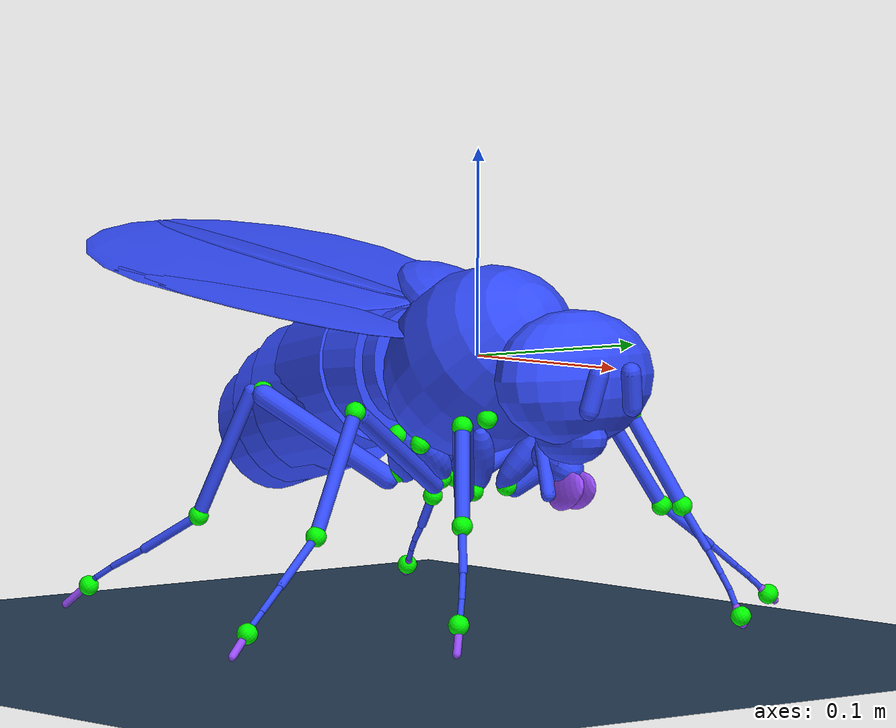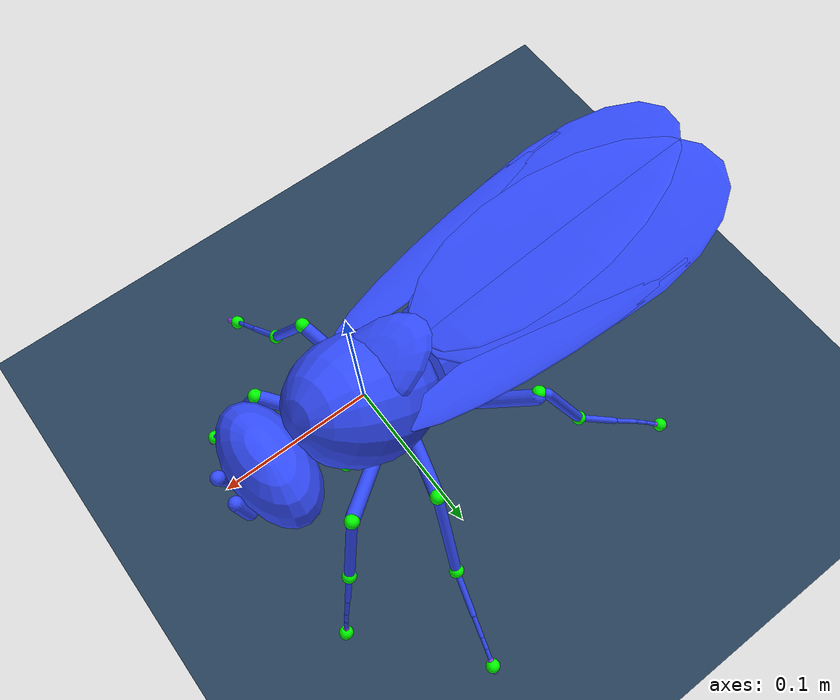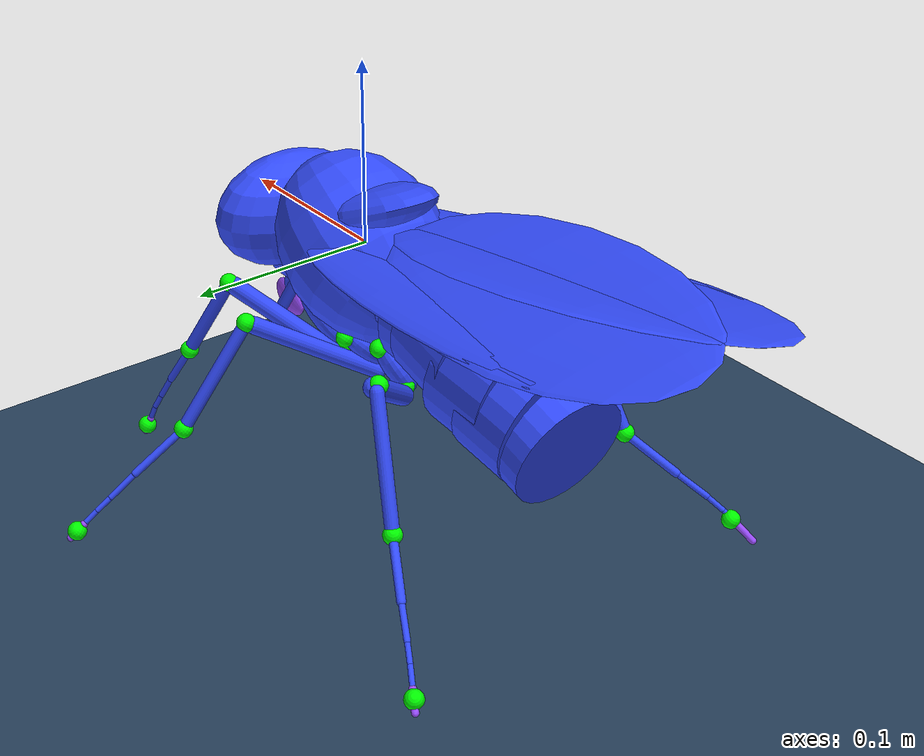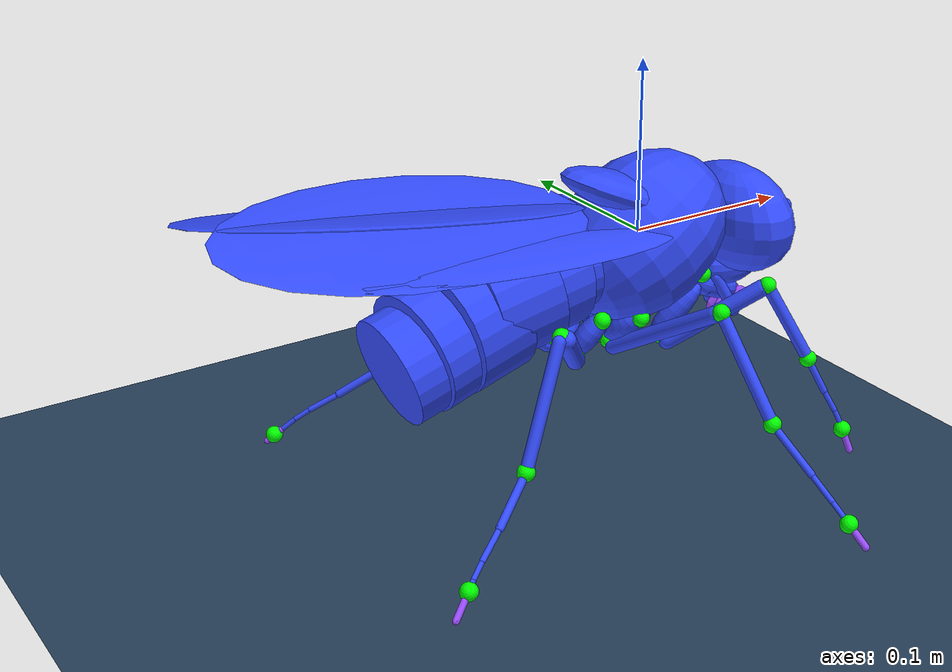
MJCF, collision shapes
<mujoco model="fruitfly">
  <compiler autolimits="true" angle="radian" />

  <option gravity="0 0 -981" density="0.00128" viscosity="0.000185" cone="elliptic" noslip_iterations="3" />

  <size nkey="1" />

  <default>
    <mesh scale="0.1 0.1 0.1" />
    <geom friction="0.5" solref="0.0002 1" solimp="0.95 0.99 0.01" />
    <general ctrllimited="true" />
    <default class="body">
      <joint limited="true" solreflimit="0.001 1" armature="1e-02" />
      <geom type="mesh" contype="0" conaffinity="0" group="1" material="body" density="0.478" />
      <site group="3" size="0.01" />
      <default class="collision">
        <geom type="capsule" contype="1" conaffinity="1" condim="1" group="4" material="blue" density="0" />
        <default class="adhesion-collision">
          <geom material="pink" friction="0.6" margin="0.0005" gap="0.0005" />
          <site type="capsule" />
        </default>
        <default class="collision-membrane">
          <geom group="5" />
        </default>
      </default>
      <default class="adhesion">
        <general dyntype="none" dynprm="1" />
        <default class="adhesion_claw">
          <adhesion group="3" ctrlrange="0 1" gain="0.985" />
        </default>
        <default class="adhesion_labrum">
          <adhesion group="3" ctrlrange="0 1" gain="1" />
        </default>
      </default>
      <default class="head">
        <joint stiffness="0.03" damping="0.001" />
        <geom density="0.575" />
        <general forcerange="-0.1 0.1" gainprm="0.1" />
        <default class="labrum">
          <general forcerange="-0.01 0.01" gainprm="0.01" />
        </default>
      </default>
      <default class="antenna">
        <joint damping="0.0003" />
        <general forcerange="-0.01 0.01" gainprm="0.01" />
        <default class="antenna_extend">
          <joint axis="1 0 0" range="-0.2 0.5" />
        </default>
        <default class="antenna_twist">
          <joint axis="0 1 0" range="-0.1 0.09" />
        </default>
        <default class="antenna_abduct">
          <joint axis="0 0 1" range="-0.4 0.8" />
        </default>
      </default>
      <default class="wing">
        <joint stiffness="0.01" damping="0.0005" />
        <general ctrlrange="-.55 .55" />
        <default class="yaw">
          <joint axis="0 0 1" range="-1.5 1.5" springref="1.5" />
          <general gainprm="3" />
        </default>
        <default class="roll">
          <joint axis="1 0 0" range="-1 1.5" springref="0.7" />
          <general gainprm="2" />
        </default>
        <default class="pitch">
          <joint axis="0 1 0" range="-1.27 2.92" springref="-1" />
          <general gainprm="1" />
        </default>
        <default class="wing-inertial">
          <geom type="box" rgba="0 0 0 0" mass="8e-06" />
        </default>
        <default class="wing-fluid">
          <geom type="ellipsoid" group="3" mass="0" />
        </default>
      </default>
      <default class="abdomen">
        <joint group="3" stiffness="0.05" damping="0.01" />
        <geom density="0.445" />
        <general gainprm="0.1" />
        <default class="abduct_abdomen">
          <joint axis="0 0 1" range="-0.1 0.1" />
        </default>
        <default class="extend_abdomen">
          <joint axis="1 0 0" range="-0.15 0.1" />
        </default>
      </default>
      <default class="haltere">
        <joint axis="1 0 0" springdamper="0.005 0.1" range="-0.2 0.2" />
      </default>
      <default class="leg">
        <joint stiffness="0.01" damping="1" />
        <geom density="1.21" />
        <default class="coxa">
          <default class="twist_coxa_T1">
            <joint axis="0 1 0" range="-0.8 0.8" />
            <general ctrlrange="-10 10" ctrllimited="true" />
          </default>
          <default class="flexion_coxa_T1">
            <joint axis="0 0 1" range="-1 0.7" />
            <general ctrlrange="-10 10" ctrllimited="true" />
          </default>
          <default class="extend_coxa_T1">
            <joint axis="1 0 0" range="-0.2 1.7" />
            <general ctrlrange="-10 10" ctrllimited="true" />
          </default>
          <default class="twist_coxa_T2">
            <joint axis="0 1 0" range="-0.75 0.8" />
            <general ctrlrange="-10 10" ctrllimited="true" />
          </default>
          <default class="flexion_coxa_T2">
            <joint axis="0 0 1" range="-0.5 0.3" />
            <general ctrlrange="-10 10" ctrllimited="true" />
          </default>
          <default class="extend_coxa_T2">
            <joint axis="1 0 0" range="-0.2 0.9" />
            <general ctrlrange="-10 10" ctrllimited="true" />
          </default>
          <default class="twist_coxa_T3">
            <joint axis="0 1 0" range="-0.15 0.8" />
            <general ctrlrange="-10 10" ctrllimited="true" />
          </default>
          <default class="flexion_coxa_T3">
            <joint axis="0 0 1" range="-0.9 0.25" />
            <general ctrlrange="-10 10" ctrllimited="true" />
          </default>
          <default class="extend_coxa_T3">
            <joint axis="1 0 0" range="-0.3 1.3" />
            <general ctrlrange="-10 10" ctrllimited="true" />
          </default>
        </default>
        <default class="femur">
          <default class="twist_femur">
            <joint axis="0 1 0" range="-1 1" />
            <general ctrlrange="-10 10" ctrllimited="true" />
            <default class="twist_femur_T2">
              <general ctrlrange="-10 10" ctrllimited="true" />
            </default>
            <default class="twist_femur_T3">
              <general ctrlrange="-10 10" ctrllimited="true" />
            </default>
          </default>
          <default class="extend_femur">
            <joint axis="1 0 0" range="-0.15 2" damping="1.5" />
            <default class="extend_femur_T1">
              <general ctrlrange="-10 10" ctrllimited="true" />
            </default>
            <default class="extend_femur_T2">
              <general ctrlrange="-10 10" ctrllimited="true" />
            </default>
          </default>
          <default class="extend_femur_T3">
            <joint axis="1 0 0" range="-0.7 1.5" damping="1.5" />
            <general ctrlrange="-10 10" ctrllimited="true" />
          </default>
        </default>
        <default class="tibia">
          <default class="extend_tibia">
            <joint axis="1 0 0" range="-1.35 1.3" damping="3" />
            <general ctrlrange="-10 10" ctrllimited="true" />
            <default class="extend_tibia_T2">
              <general ctrlrange="-10 10" ctrllimited="true" />
            </default>
            <default class="extend_tibia_T3">
              <general ctrlrange="-10 10" ctrllimited="true" />
            </default>
          </default>
        </default>
        <default class="tarsus">
          <joint axis="1 0 0" />
          <default class="extend_tarsus_T1">
            <joint range="-0.7 1.2" damping="3" />
            <general ctrlrange="-10 10" ctrllimited="true" />
          </default>
          <default class="extend_tarsus_T2">
            <joint range="-1 1.8" damping="3" />
            <general ctrlrange="-10 10" ctrllimited="true" />
          </default>
          <default class="extend_tarsus_T3">
            <joint range="-0.8 1.2" damping="3" />
            <general ctrlrange="-10 10" ctrllimited="true" />
          </default>
          <default class="extend_tarsus">
            <joint group="3" stiffness="0.1" range="-0.36 0.36" />
            <!-- damping=".002" -->
            <general ctrlrange="-10 10" ctrllimited="true" />
          </default>
        </default>
      </default>
    </default>
  </default>

  <visual>
    <global offwidth="3840" offheight="2160" />
    <quality shadowsize="2048" offsamples="24" />
    <headlight ambient="0.4 0.4 0.4" diffuse="0.8 0.8 0.8" specular="0.1 0.1 0.1" />
    <map stiffness="1e+04" stiffnessrot="5e+04" force="2e-05" />
    <scale jointwidth="0.01" framewidth="0.01" />
  </visual>

  <statistic meansize="0.02" />

  <asset>
    <texture type="2d" name="groundplane" builtin="checker" rgb1="0.2 0.3 0.4" rgb2="0.1 0.2 0.3" width="200" height="200" />
    <material name="body" shininess="0.6" rgba="0.674 0.35 0.143 1" />
    <material name="red" shininess="0.692" rgba="0.8 0.0279 0.00154 1" />
    <material name="ocelli" shininess="1" rgba="0.128 0.0488 0.0154 1" />
    <material name="black" shininess="0.727" rgba="0 0 0 1" />
    <material name="bristle-brown" shininess="0.907" rgba="0 0 0 1" />
    <material name="lower" shininess="0.6" rgba="0.799 0.61 0.386 1" />
    <material name="brown" shininess="0.6" rgba="0.202 0.0782 0.0262 1" />
    <material name="membrane" specular="0.62" shininess="0.907" rgba="0.539 0.686 0.8 0.4" />
    <material name="blue" shininess="0.6" rgba="0.2 0.3 1 1" />
    <material name="ballsurface" texture="groundplane" texuniform="true" texrepeat="2 2" reflectance="0.2" />
    <mesh name="head" file="assets/head_body.obj" />
    <mesh name="head_red" file="assets/head_red.obj" />
    <mesh name="head_ocelli" file="assets/head_ocelli.obj" />
    <mesh name="head_black" file="assets/head_black.obj" />
    <mesh name="haustellum" file="assets/haustellum_body.obj" />
    <mesh name="haustellum_black" file="assets/haustellum_black.obj" />
    <mesh name="rostrum" file="assets/rostrum_body.obj" />
    <mesh name="rostrum_bristle-brown" file="assets/rostrum_bristle-brown.obj" />
    <mesh name="labrum_left_lower" file="assets/labrum_left_lower.obj" />
    <mesh name="wing_left_brown" file="assets/wing_left_brown.obj" />
    <mesh name="wing_left_membrane" file="assets/wing_left_membrane.obj" />
    <mesh name="antenna_left" file="assets/antenna_left_body.obj" />
    <mesh name="antenna_left_black" file="assets/antenna_left_black.obj" />
    <mesh name="haltere_left" file="assets/haltere_left_body.obj" />
    <mesh name="labrum_right_lower" file="assets/labrum_right_lower.obj" />
    <mesh name="wing_right_brown" file="assets/wing_right_brown.obj" />
    <mesh name="wing_right_membrane" file="assets/wing_right_membrane.obj" />
    <mesh name="antenna_right" file="assets/antenna_right_body.obj" />
    <mesh name="antenna_right_black" file="assets/antenna_right_black.obj" />
    <mesh name="haltere_right" file="assets/haltere_right_body.obj" />
    <mesh name="thorax" file="assets/thorax_body.obj" />
    <mesh name="thorax_black" file="assets/thorax_black.obj" />
    <mesh name="abdomen_1" file="assets/abdomen_1_body.obj" />
    <mesh name="abdomen_1_lower" file="assets/abdomen_1_lower.obj" />
    <mesh name="abdomen_2" file="assets/abdomen_2_body.obj" />
    <mesh name="abdomen_2_lower" file="assets/abdomen_2_lower.obj" />
    <mesh name="abdomen_3" file="assets/abdomen_3_body.obj" />
    <mesh name="abdomen_3_lower" file="assets/abdomen_3_lower.obj" />
    <mesh name="abdomen_4" file="assets/abdomen_4_body.obj" />
    <mesh name="abdomen_4_lower" file="assets/abdomen_4_lower.obj" />
    <mesh name="abdomen_5" file="assets/abdomen_5_body.obj" />
    <mesh name="abdomen_5_lower" file="assets/abdomen_5_lower.obj" />
    <mesh name="abdomen_6" file="assets/abdomen_6_body.obj" />
    <mesh name="abdomen_6_lower" file="assets/abdomen_6_lower.obj" />
    <mesh name="abdomen_7" file="assets/abdomen_7_body.obj" />
    <mesh name="abdomen_7_lower" file="assets/abdomen_7_lower.obj" />
    <mesh name="abdomen_8" file="assets/abdomen_8_body.obj" />
    <mesh name="tibia_T1_left" file="assets/tibia_T1_left_body.obj" />
    <mesh name="tarsus_T1_1_left" file="assets/tarsus_T1_1_left_body.obj" />
    <mesh name="tarsus_T1_2_left" file="assets/tarsus_T1_2_left_body.obj" />
    <mesh name="tarsus_T1_3_left" file="assets/tarsus_T1_3_left_body.obj" />
    <mesh name="tarsus_T1_4_left" file="assets/tarsus_T1_4_left_body.obj" />
    <mesh name="tarsal_claw_T1_left_brown" file="assets/tarsal_claw_T1_left_brown.obj" />
    <mesh name="tarsus_T2_2_left" file="assets/tarsus_T2_2_left_body.obj" />
    <mesh name="tarsus_T2_3_left" file="assets/tarsus_T2_3_left_body.obj" />
    <mesh name="tarsus_T2_4_left" file="assets/tarsus_T2_4_left_body.obj" />
    <mesh name="tarsal_claw_T2_left_brown" file="assets/tarsal_claw_T2_left_brown.obj" />
    <mesh name="tarsus_T2_1_left" file="assets/tarsus_T2_1_left_body.obj" />
    <mesh name="tarsus_T3_2_left" file="assets/tarsus_T3_2_left_body.obj" />
    <mesh name="tarsus_T3_3_left" file="assets/tarsus_T3_3_left_body.obj" />
    <mesh name="tarsus_T3_4_left" file="assets/tarsus_T3_4_left_body.obj" />
    <mesh name="tarsal_claw_T3_left_brown" file="assets/tarsal_claw_T3_left_brown.obj" />
    <mesh name="tarsus_T3_1_left" file="assets/tarsus_T3_1_left_body.obj" />
    <mesh name="tibia_T2_left" file="assets/tibia_T2_left_body.obj" />
    <mesh name="tibia_T3_left" file="assets/tibia_T3_left_body.obj" />
    <mesh name="femur_T1_left" file="assets/femur_T1_left_body.obj" />
    <mesh name="femur_T2_left" file="assets/femur_T2_left_body.obj" />
    <mesh name="femur_T3_left" file="assets/femur_T3_left_body.obj" />
    <mesh name="femur_T1_right" file="assets/femur_T1_right_body.obj" />
    <mesh name="tibia_T1_right" file="assets/tibia_T1_right_body.obj" />
    <mesh name="tarsus_T1_1_right" file="assets/tarsus_T1_1_right_body.obj" />
    <mesh name="tarsus_T1_2_right" file="assets/tarsus_T1_2_right_body.obj" />
    <mesh name="tarsus_T1_3_right" file="assets/tarsus_T1_3_right_body.obj" />
    <mesh name="tarsus_T1_4_right" file="assets/tarsus_T1_4_right_body.obj" />
    <mesh name="tarsal_claw_T1_right_brown" file="assets/tarsal_claw_T1_right_brown.obj" />
    <mesh name="femur_T2_right" file="assets/femur_T2_right_body.obj" />
    <mesh name="tibia_T2_right" file="assets/tibia_T2_right_body.obj" />
    <mesh name="tarsus_T2_1_right" file="assets/tarsus_T2_1_right_body.obj" />
    <mesh name="tarsus_T2_2_right" file="assets/tarsus_T2_2_right_body.obj" />
    <mesh name="tarsus_T2_3_right" file="assets/tarsus_T2_3_right_body.obj" />
    <mesh name="tarsus_T2_4_right" file="assets/tarsus_T2_4_right_body.obj" />
    <mesh name="tarsal_claw_T2_right_brown" file="assets/tarsal_claw_T2_right_brown.obj" />
    <mesh name="femur_T3_right" file="assets/femur_T3_right_body.obj" />
    <mesh name="tibia_T3_right" file="assets/tibia_T3_right_body.obj" />
    <mesh name="tarsus_T3_1_right" file="assets/tarsus_T3_1_right_body.obj" />
    <mesh name="tarsus_T3_2_right" file="assets/tarsus_T3_2_right_body.obj" />
    <mesh name="tarsus_T3_3_right" file="assets/tarsus_T3_3_right_body.obj" />
    <mesh name="tarsus_T3_4_right" file="assets/tarsus_T3_4_right_body.obj" />
    <mesh name="tarsal_claw_T3_right_brown" file="assets/tarsal_claw_T3_right_brown.obj" />
    <mesh name="coxa_T1_left" file="assets/coxa_T1_left_body.obj" />
    <mesh name="coxa_T1_right" file="assets/coxa_T1_right_body.obj" />
    <mesh name="coxa_T2_left" file="assets/coxa_T2_left_body.obj" />
    <mesh name="coxa_T2_right" file="assets/coxa_T2_right_body.obj" />
    <mesh name="coxa_T3_left" file="assets/coxa_T3_left_body.obj" />
    <mesh name="coxa_T3_right" file="assets/coxa_T3_right_body.obj" />
    <material name="pink" rgba="0.6 0.3 1 1" />
  </asset>

  <worldbody>
    <geom name="floor" type="plane" size="5 5 .1" material="ballsurface" pos="0 0 -.15" />
    <body name="thorax" childclass="body">
      <freejoint name="free" />
      <light name="right" mode="trackcom" pos="0 -1 1" dir="0 1 -1" diffuse="0.3 0.3 0.3" />
      <camera name="track1" mode="trackcom" pos="0.6 0.6 0.22" quat="0.312 0.221 0.533 0.754" />
      <camera name="track2" mode="trackcom" pos="0 -1.1 0.1" quat="0.707 0.707 0 0" />
      <camera name="track3" mode="trackcom" pos="-0.9 -0.9 0.9" quat="0.82 0.425 -0.176 -0.34" />
      <camera name="back" mode="track" pos="-0.462 0 0.297" xyaxes="0 -1 0 0.707 0 0.707" />
      <camera name="side" mode="track" pos="-0.055 0.424 -0.064" xyaxes="-1 0 0 0 0 1" />
      <camera name="bottom" mode="track" pos="0.01 0 -0.516" xyaxes="0 1 0 0.991 0 0.136" />
      <light name="left" mode="trackcom" pos="0 1 1" dir="0 -1 -1" diffuse="0.3 0.3 0.3" />
      <light name="tracking" mode="trackcom" pos="0 0 1" />
      <site name="thorax" />
      <site name="hover_up_dir" pos="0.0262 0 0.0262" quat="0.915 0 0.403 0" />
      <geom name="thorax" mass="0.00034" pos="-0.00791 0 -0.123" quat="0 0 0 -1" mesh="thorax" />
      <geom name="thorax_collision" class="collision" type="ellipsoid" size="0.0437 0.0437 0.0551" pos="0.00168 0 -0.00262" quat="0 -0.479 0 -0.878" />
      <geom name="thorax_collision2" class="collision" type="ellipsoid" size="0.0499 0.028 0.0114" pos="-0.00445 0 0.0219" quat="0 -0.199 0 -0.98" />
      <geom name="thorax_black" material="black" mass="0" pos="-0.00791 0 -0.123" quat="0 0 0 -1" mesh="thorax_black" />
      <body name="head" childclass="head" pos="0.0567 3.81e-07 -0.00305" quat="0.702 -0.087 0.087 -0.702">
        <site name="head" pos="0 0.015 0" quat="0 0 0 1" />
        <geom name="head_collision" class="collision" type="ellipsoid" size="0.0455 0.0262 0.0324" pos="0 0.0149 0.000875" euler="0.3 0 0" />
        <geom name="head" pos="4.11e-07 -0.0334 -0.132" quat="0.702 0.087 0.087 -0.702" mesh="head" />
        <geom name="head_red" material="red" pos="4.11e-07 -0.0334 -0.132" quat="0.702 0.087 0.087 -0.702" mesh="head_red" />
        <geom name="head_ocelli" material="ocelli" pos="4.11e-07 -0.0334 -0.132" quat="0.702 0.087 0.087 -0.702" mesh="head_ocelli" />
        <camera name="eye_right" fovy="140" pos="0.0219 0.0131 0" quat="0.474 0.688 -0.344 -0.429" />
        <camera name="eye_left" fovy="140" pos="-0.0219 0.0131 0" quat="0.474 0.688 0.344 0.429" />
        <geom name="head_black" material="black" mass="0" pos="4.11e-07 -0.0334 -0.132" quat="0.702 0.087 0.087 -0.702" mesh="head_black" />
        <body name="rostrum" pos="0 0.0368 -0.0235" quat="2.2e-07 -1.21e-07 0.192 -0.981">
          <geom name="rostrum" pos="-4e-07 0.106 -0.0742" quat="0.705 0.0494 -0.0494 0.705" mesh="rostrum" />
          <geom name="rostrum_collision_right" class="collision" size="0.0035" fromto="0.00613 0.0324 0 0.0114 0.0245 -0.0236" />
          <geom name="rostrum_collision_left" class="collision" size="0.0035" fromto="-0.00613 0.0324 0 -0.0114 0.0245 -0.0236" />
          <geom name="rostrum_collision" class="collision" type="ellipsoid" size="0.0131 0.0219 0.0131" pos="0 0.0175 0.00263" euler="0.1 0 0" />
          <geom name="rostrum_bristle-brown" material="bristle-brown" pos="-4e-07 0.106 -0.0742" quat="0.705 0.0494 -0.0494 0.705" mesh="rostrum_bristle-brown" />
          <body name="haustellum" pos="0 0.0377 0" quat="2.33e-07 -1.56e-07 -0.347 0.938">
            <geom name="haustellum" pos="4.24e-07 -0.00352 -0.101" quat="0.679 0.198 0.198 -0.679" mesh="haustellum" />
            <geom name="haustellum_collision" class="collision" type="capsule" size="0.00788 0.00788" pos="0 0.0123 -0.000948" quat="0.633 0.774 0 0" />
            <geom name="haustellum_black" material="black" mass="0" pos="4.24e-07 -0.00352 -0.101" quat="0.679 0.198 0.198 -0.679" mesh="haustellum_black" />
            <body name="labrum_left" childclass="labrum" pos="-0.00263 0.0182 0" quat="0.741 -0.0142 -0.591 0.319">
              <geom name="labrum_left_lower" material="lower" pos="-0.0977 0.0216 -0.0249" quat="-0.166 0.181 -0.494 0.834" mesh="labrum_left_lower" />
              <geom name="labrum_left_lower_collision" class="adhesion-collision" type="ellipsoid" size="0.0035 0.00875 0.0131" pos="-0.000603 0.0106 -0.00438" quat="-0.174 -0.715 0.0876 0.672" />
            </body>
            <body name="labrum_right" childclass="labrum" pos="0.00263 0.0182 0" quat="0.699 0.00274 0.642 -0.316">
              <geom name="labrum_right_lower" material="lower" pos="0.1 0.022 -0.0113" quat="-0.817 -0.509 0.236 0.133" mesh="labrum_right_lower" />
              <geom name="labrum_right_lower_collision" class="adhesion-collision" type="ellipsoid" size="0.0035 0.00875 0.0131" pos="0.00116 0.0106 -0.00414" quat="-0.175 -0.668 -0.0724 -0.719" />
            </body>
          </body>
        </body>
        <body name="antenna_left" pos="-0.00795 0.0378 0.0129" quat="0.785 -0.59 -0.0128 0.192">
          <geom name="antenna_left" pos="0.0148 0.116 -0.112" quat="0.364 0.49 0.474 -0.635" mesh="antenna_left" />
          <geom name="antenna_left_collision" class="collision" type="capsule" size="0.00481 0.00875" pos="0 0.0114 0.00263" quat="0.634 -0.773 0 0" />
          <geom name="antenna_left_black" material="black" mass="0" pos="0.0148 0.116 -0.112" quat="0.364 0.49 0.474 -0.635" mesh="antenna_left_black" />
        </body>
        <body name="antenna_right" pos="0.00861 0.038 0.0129" quat="0.59 0.785 -0.192 -0.0128">
          <geom name="antenna_right" pos="-0.0153 -0.116 0.112" quat="-0.474 0.635 0.364 0.49" mesh="antenna_right" />
          <geom name="antenna_right_collision" class="collision" type="capsule" size="0.00481 0.00875" pos="-0.000616 -0.0114 -0.00231" quat="0.782 0.623 -0.0258 -0.0164" />
          <geom name="antenna_right_black" material="black" mass="0" pos="-0.0153 -0.116 0.112" quat="-0.474 0.635 0.364 0.49" mesh="antenna_right_black" />
        </body>
      </body>
      <body name="wing_left" childclass="wing" pos="-0.00694 0.0432 0.0091" quat="0.617    -0.402    -0.304    -0.604">
        <geom name="wing_left_brown" material="brown" mass="0" pos="-0.0968 0.0432 -0.09" quat="-0.915 0 -0.403 0" mesh="wing_left_brown" />
        <geom name="wing_left_brown_collision" class="collision" type="ellipsoid" size="0.00219 0.0175 0.114" pos="0.00186 -0.11 -0.00166" quat="-0.673 -0.647 0.26 -0.248" />
        <geom name="wing_left_membrane" material="membrane" mass="0" pos="-0.0968 0.0432 -0.09" quat="-0.915 0 -0.403 0" mesh="wing_left_membrane" />
        <geom name="wing_left_membrane_collision" class="collision-membrane" type="ellipsoid" size="0.00306 0.0551 0.114" pos="0.0263 -0.148 -0.0289" quat="-0.685 -0.634 0.265 -0.243" />
        <geom name="wing_left_fluid" class="wing-fluid" size="0.0005 0.0551 0.114" pos="0.0263 -0.148 -0.0289" quat="-0.685 -0.634 0.265 -0.243" />
        <geom name="wing_left_inertial" class="wing-inertial" size="0.0005 0.0551 0.114" pos="0.0263 -0.148 -0.0289" quat="-0.685 -0.634 0.265 -0.243" />
      </body>
      <body name="wing_right" childclass="wing" pos="-0.00694 -0.0432 0.0091" quat="-0.304     0.604    -0.617    -0.402 ">
        <geom name="wing_right_brown" material="brown" mass="0" pos="0.0968 -0.0432 0.09" quat="-0.403 0 0.915 0" mesh="wing_right_brown" />
        <geom name="wing_right_brown_collision" class="collision" type="ellipsoid" size="0.00219 0.0175 0.114" pos="-0.00186 0.11 0.00166" quat="0.248 0.26 0.647 -0.673" />
        <geom name="wing_right_membrane" material="membrane" mass="0" pos="0.0968 -0.0432 0.09" quat="-0.403 0 0.915 0" mesh="wing_right_membrane" />
        <geom name="wing_right_membrane_collision" class="collision-membrane" type="ellipsoid" size="0.00306 0.0551 0.114" pos="-0.0263 0.148 0.0289" quat="0.243 0.265 0.634 -0.685" />
        <geom name="wing_right_fluid" class="wing-fluid" size="0.0005 0.0551 0.114" pos="-0.0263 0.148 0.0289" quat="0.243 0.265 0.634 -0.685" />
        <geom name="wing_right_inertial" class="wing-inertial" size="0.0005 0.0551 0.114" pos="-0.0263 0.148 0.0289" quat="0.243 0.265 0.634 -0.685" />
      </body>
      <body name="abdomen" childclass="abdomen" pos="-0.0447 -0.000555 0.00428" quat="-0.704 -0.0859 -0.0853 -0.7">
        <geom name="abdomen" pos="0.000758 -0.0663 -0.115" quat="0.7 -0.0853 0.0859 0.704" mesh="abdomen_1" />
        <geom name="abdomen_lower" material="lower" pos="0.000758 -0.0663 -0.115" quat="0.7 -0.0853 0.0859 0.704" mesh="abdomen_1_lower" />
        <geom name="abdomen_collision" class="collision" type="cylinder" size="0.0281 0.0102 0" pos="-0.000187 0.00646 -0.0146" quat="0.0104 -0.0205 0.824 0.566" />
        <body name="abdomen_2" pos="0 0.0119 0" quat="0.981 -0.192 -0.000269 0.00144">
          <geom name="abdomen_2" pos="0.000532 -0.0293 -0.136" quat="0.704 0.0507 -0.0503 0.706" mesh="abdomen_2" />
          <geom name="abdomen_2_lower" material="lower" pos="0.000532 -0.0293 -0.136" quat="0.704 0.0507 -0.0503 0.706" mesh="abdomen_2_lower" />
          <geom name="abdomen_2_collision" class="collision" type="cylinder" size="0.035 0.0142 0" pos="-0.000182 0.0166 -0.015" quat="-0.0458 -0.0256 0.694 0.718" />
          <body name="abdomen_3" pos="0 0.0212 0" quat="0.996 -0.0909 6.69e-05 0.000525">
            <geom name="abdomen_3" pos="0.000511 -0.0251 -0.143" quat="0.697 0.114 -0.114 0.699" mesh="abdomen_3" />
            <geom name="abdomen_3_lower" material="lower" pos="0.000511 -0.0251 -0.143" quat="0.697 0.114 -0.114 0.699" mesh="abdomen_3_lower" />
            <geom name="abdomen_3_collision" class="collision" type="cylinder" size="0.0371 0.0194 0" pos="3.29e-05 0.0198 -0.0136" quat="0.697 -0.605 0.274 0.271" />
            <body name="abdomen_4" pos="0 0.0313 0" quat="0.999 -0.0332 0.000147 -0.000229">
              <geom name="abdomen_4" pos="0.000577 -0.0468 -0.146" quat="0.693 0.137 -0.138 0.695" mesh="abdomen_4" />
              <geom name="abdomen_4_lower" material="lower" pos="0.000577 -0.0468 -0.146" quat="0.693 0.137 -0.138 0.695" mesh="abdomen_4_lower" />
              <geom name="abdomen_4_collision" class="collision" type="cylinder" size="0.0377 0.0176 0" pos="9.67e-05 0.015 -0.0158" quat="-0.0133 -0.062 0.637 0.768" />
              <body name="abdomen_5" pos="0 0.0262 0" quat="0.999 -0.0368 -4.72e-05 -0.000327">
                <geom name="abdomen_5" pos="0.000607 -0.062 -0.151" quat="0.687 0.163 -0.163 0.689" mesh="abdomen_5" />
                <geom name="abdomen_5_lower" material="lower" pos="0.000607 -0.062 -0.151" quat="0.687 0.163 -0.163 0.689" mesh="abdomen_5_lower" />
                <geom name="abdomen_5_collision" class="collision" type="cylinder" size="0.0353 0.016 0" pos="0.000282 0.0105 -0.0156" quat="-0.00496 -0.0596 0.624 0.779" />
                <body name="abdomen_6" pos="0 0.0213 0" quat="0.998 -0.0662 0.000156 -0.000351">
                  <geom name="abdomen_6" pos="0.000707 -0.0626 -0.161" quat="0.674 0.208 -0.208 0.677" mesh="abdomen_6" />
                  <geom name="abdomen_6_lower" material="lower" pos="0.000707 -0.0626 -0.161" quat="0.674 0.208 -0.208 0.677" mesh="abdomen_6_lower" />
                  <geom name="abdomen_6_collision" class="collision" type="cylinder" size="0.0318 0.0141 0" pos="-0.000157 0.00942 -0.0143" quat="-0.00411 0.000397 0.592 0.806" />
                  <body name="abdomen_7" pos="0 0.0182 0" quat="0.995 -0.102 -1.79e-06 -0.000187">
                    <geom name="abdomen_8" pos="0.000731 -0.0464 -0.174" quat="0.649 0.276 -0.276 0.653" mesh="abdomen_8" />
                    <geom name="abdomen_7" pos="0.000731 -0.0464 -0.174" quat="0.649 0.276 -0.276 0.653" mesh="abdomen_7" />
                    <geom name="abdomen_7_lower" material="lower" pos="0.000731 -0.0464 -0.174" quat="0.649 0.276 -0.276 0.653" mesh="abdomen_7_lower" />
                  </body>
                </body>
              </body>
            </body>
          </body>
        </body>
      </body>
      <body name="haltere_left" childclass="haltere" pos="-0.0386 0.0247 -0.00866" quat="0.291 -0.204 0.826 0.439">
        <geom name="haltere_left" pos="0.0545 -0.101 0.0395" quat="-0.439 0.826 0.204 -0.291" mesh="haltere_left" />
      </body>
      <body name="haltere_right" childclass="haltere" pos="-0.0386 -0.0247 -0.00866" quat="-0.438 -0.829 0.206 -0.28">
        <geom name="haltere_right" pos="-0.0528 -0.101 0.0405" quat="0.28 0.206 0.829 0.438" mesh="haltere_right" />
      </body>
      <body name="coxa_T1_left" childclass="leg" pos="0.0317 0.0209 -0.0272" quat="-0.532 0.787 -0.311 -0.0229">
        <joint name="coxa_flexion_T1_left" class="flexion_coxa_T1" />
        <joint name="coxa_twist_T1_left" class="twist_coxa_T1" />
        <geom name="coxa_T1_left" pos="0.0131 0.104 0.0119" quat="0.0229 -0.311 -0.787 0.532" mesh="coxa_T1_left" />
        <geom name="coxa_T1_left_collision" class="collision" type="ellipsoid" size="0.00679 0.00752 0.0208" pos="-2.04e-05 0.0261 -0.000454" quat="-0.417 -0.383 -0.532 0.63" />
        <site name="tracking[coxa_T1_left]" pos="0 0 0" size="0.005" group="0" rgba="0 1 0 1" />
        <body name="femur_T1_left" pos="0 0.0437 0" quat="0 0 0.252 0.968">
          <joint name="femur_twist_T1_left" class="twist_femur" />
          <joint name="femur_T1_left" class="extend_femur_T1" />
          <geom name="femur_T1_left" pos="-0.0131 -0.0472 0.04" quat="0.316 -0.896 0.295 -0.101" mesh="femur_T1_left" />
          <geom name="femur_T1_left_collision" class="collision" size="0.005" fromto="0.00263 0.00263 0.00438 0 0.0662 0" />
          <site name="tracking[femur_T1_left]" pos="0 0 0" size="0.005" group="0" rgba="0 1 0 1" />
          <body name="tibia_T1_left" pos="0 0.0697 0" quat="0.186 0.162 0.677 -0.694">
            <joint name="tibia_T1_left" class="extend_tibia" />
            <geom name="tibia_T1_left" pos="-0.00315 -0.0396 0.118" quat="-0.183 0.354 0.797 0.453" mesh="tibia_T1_left" />
            <geom name="tibia_T1_left_collision" class="collision" size="0.00362" fromto="0 0 0 0 -0.051 0.00175" />
            <site name="tracking[tibia_T1_left]" pos="0 0 0" size="0.005" group="0" rgba="0 1 0 1" />
            <body name="tarsus_T1_left" pos="0 -0.051 0.00175" quat="0.039 0.998 0.00674 0.0474">
              <joint name="tarsus_T1_left" class="extend_tarsus_T1" />
              <geom name="tarsus_T1_left" pos="0.00797 -0.00233 -0.116" quat="-0.373 -0.231 -0.468 0.767" mesh="tarsus_T1_1_left" />
              <geom name="tarsus_T1_left_collision" class="collision" size="0.00204" fromto="0 0 0 -0.000165 0.0235 0.00174" />
              <site name="tracking[tarsus_T1_left]" pos="0 0 0" size="0.005" group="0" rgba="0 1 0 1" />
              <body name="tarsus2_T1_left" pos="-0.000165 0.0235 0.00174">
                <geom name="tarsus2_T1_left" pos="0.00813 -0.0258 -0.118" quat="0.373 0.231 0.468 -0.767" mesh="tarsus_T1_2_left" />
                <geom name="tarsus2_T1_left_collision" class="collision" size="0.00159" fromto="0 0 0 0.000113 0.0136 0.000556" />
                <body name="tarsus3_T1_left" pos="0.000113 0.0136 0.000556">
                  <geom name="tarsus3_T1_left" pos="0.00802 -0.0394 -0.119" quat="-0.373 -0.231 -0.468 0.767" mesh="tarsus_T1_3_left" />
                  <geom name="tarsus3_T1_left_collision" class="collision" size="0.00149" fromto="0 0 0 -0.000255 0.00909 0.0002" />
                  <body name="tarsus4_T1_left" pos="-0.000255 0.00909 0.0002">
                    <geom name="tarsus4_T1_left" pos="0.00827 -0.0485 -0.119" quat="0.373 0.231 0.468 -0.767" mesh="tarsus_T1_4_left" />
                    <geom name="tarsus4_T1_left_collision" class="collision" size="0.00148" fromto="0 0 0 -7.12e-05 0.00906 -0.00081" />
                    <body name="claw_T1_left" pos="-7.12e-05 0.00906 -0.00081">
                      <geom name="tarsal_claw_T1_left" material="brown" pos="0.00835 -0.0575 -0.118" quat="-0.373 -0.231 -0.468 0.767" mesh="tarsal_claw_T1_left_brown" />
                      <geom name="tarsal_claw_T1_left_collision" class="adhesion-collision" type="capsule" size="0.00199" fromto="0 0 0 -7.12e-05 0.00906 -0.00081" />
                      <site name="claw_T1_left" class="adhesion-collision" size="0.00219" fromto="0 0 0 -7.12e-05 0.00906 -0.00081" />
                      <site name="tracking[claw_T1_left]" pos="0 0.005 0" size="0.005" group="0" rgba="0 1 0 1" />
                    </body>
                  </body>
                </body>
              </body>
            </body>
          </body>
        </body>
      </body>
      <body name="coxa_T1_right" childclass="leg" pos="0.0317 -0.0209 -0.0272" quat="0.319 0.011 -0.543 -0.777">
        <joint name="coxa_flexion_T1_right" class="flexion_coxa_T1" />
        <joint name="coxa_twist_T1_right" class="twist_coxa_T1" />
        <geom name="coxa_T1_right" pos="-0.0104 -0.105 -0.00761" quat="-0.777 0.543 0.011 0.319" mesh="coxa_T1_right" />
        <geom name="coxa_T1_right_collision" class="collision" type="ellipsoid" size="0.00679 0.00752 0.0208" pos="0.00061 -0.026 0.00153" quat="-0.508 0.628 0.447 0.385" />
        <site name="tracking[coxa_T1_right]" pos="0 0 0" size="0.005" group="0" rgba="0 1 0 1" />
        <body name="femur_T1_right" pos="0 -0.0436 0" quat="0 0 0.261 0.965">
          <joint name="femur_twist_T1_right" class="twist_femur" />
          <joint name="femur_T1_right" class="extend_femur_T1" />
          <geom name="femur_T1_right" pos="0.0104 0.0492 -0.0376" quat="-0.31 0.0726 0.321 -0.892" mesh="femur_T1_right" />
          <geom name="femur_T1_right_collision" class="collision" size="0.005" fromto="-0.00263 -0.00263 -0.00438 0 -0.0663 0" />
          <site name="tracking[femur_T1_right]" pos="0 0 0" size="0.005" group="0" rgba="0 1 0 1" />
          <body name="tibia_T1_right" pos="0 -0.0698 0" quat="0.163 0.148 0.688 -0.692">
            <joint name="tibia_T1_right" class="extend_tibia" />
            <geom name="tibia_T1_right" pos="0.00407 0.0384 -0.119" quat="-0.798 -0.45 -0.184 0.357" mesh="tibia_T1_right" />
            <geom name="tibia_T1_right_collision" class="collision" size="0.00362" fromto="0 0 0 0 0.0515 -0.00175" />
            <site name="tracking[tibia_T1_right]" pos="0 0 0" size="0.005" group="0" rgba="0 1 0 1" />
            <body name="tarsus_T1_right" pos="0 0.0515 -0.00175" quat="-0.0745 -0.995 0.0133 0.0704">
              <joint name="tarsus_T1_right" class="extend_tarsus_T1" />
              <geom name="tarsus_T1_right" pos="0.0207 -0.00479 0.116" quat="-0.529 0.778 0.299 0.16" mesh="tarsus_T1_1_right" />
              <geom name="tarsus_T1_right_collision" class="collision" size="0.00204" fromto="0 0 0 -0.000965 -0.0227 -0.00161" />
              <site name="tracking[tarsus_T1_right]" pos="0 0 0" size="0.005" group="0" rgba="0 1 0 1" />
              <body name="tarsus2_T1_right" pos="-0.000965 -0.0227 -0.00161">
                <geom name="tarsus2_T1_right" pos="0.0217 0.0179 0.118" quat="0.529 -0.778 -0.299 -0.16" mesh="tarsus_T1_2_right" />
                <geom name="tarsus2_T1_right_collision" class="collision" size="0.00159" fromto="0 0 0 0.000143 -0.0136 -0.00168" />
                <body name="tarsus3_T1_right" pos="0.000143 -0.0136 -0.00168">
                  <geom name="tarsus3_T1_right" pos="0.0215 0.0316 0.12" quat="-0.529 0.778 0.299 0.16" mesh="tarsus_T1_3_right" />
                  <geom name="tarsus3_T1_right_collision" class="collision" size="0.00149" fromto="0 0 0 0.000437 -0.00899 -0.00063" />
                  <body name="tarsus4_T1_right" pos="0.000437 -0.00899 -0.00063">
                    <geom name="tarsus4_T1_right" pos="0.0211 0.0405 0.12" quat="0.529 -0.778 -0.299 -0.16" mesh="tarsus_T1_4_right" />
                    <geom name="tarsus4_T1_right_collision" class="collision" size="0.00148" fromto="0 0 0 0.000765 -0.00899 0.000134" />
                    <body name="claw_T1_right" pos="0.000765 -0.00899 0.000134">
                      <geom name="tarsal_claw_T1_right" material="brown" pos="0.0203 0.0495 0.12" quat="-0.529 0.778 0.299 0.16" mesh="tarsal_claw_T1_right_brown" />
                      <geom name="tarsal_claw_T1_right_collision" class="adhesion-collision" type="capsule" size="0.00199" fromto="0 0 0 0.000765 -0.00899 0.000134" />
                      <site name="claw_T1_right" class="adhesion-collision" size="0.00219" fromto="0 0 0 0.000765 -0.00899 0.000134" />
                      <site name="tracking[claw_T1_right]" pos="0 0.005 0" size="0.005" group="0" rgba="0 1 0 1" />
                    </body>
                  </body>
                </body>
              </body>
            </body>
          </body>
        </body>
      </body>
      <body name="coxa_T2_left" childclass="leg" pos="-0.0144 0.0241 -0.0425" quat="-0.371 0.917 -0.126 -0.0722">
        <joint name="coxa_flexion_T2_left" class="flexion_coxa_T2" />
        <joint name="coxa_twist_T2_left" class="twist_coxa_T2" />
        <geom name="coxa_T2_left" pos="0.0287 0.0682 0.0404" quat="0.0722 -0.126 -0.917 0.371" mesh="coxa_T2_left" />
        <geom name="coxa_T2_left_collision" class="collision" type="ellipsoid" size="0.00788 0.007 0.0149" pos="0.000349 0.0143 -0.00216" quat="0.707 -0.707 0 0" />
        <site name="tracking[coxa_T2_left]" pos="0 0 0" size="0.005" group="0" rgba="0 1 0 1" />
        <body name="femur_T2_left" pos="0 0.0281 0" quat="0 0 0.128 0.992">
          <joint name="femur_twist_T2_left" class="twist_femur_T2" />
          <joint name="femur_T2_left" class="extend_femur_T2" />
          <site name="tracking[femur_T2_left]" pos="0 0 0" size="0.005" group="0" rgba="0 1 0 1" />
          <geom name="femur_T2_left" pos="-0.0287 -0.0285 0.0493" quat="0.251 -0.957 0.116 -0.0879" mesh="femur_T2_left" />
          <geom name="femur_T2_left_collision" class="collision" size="0.00469" fromto="0 0.00263 0.00438 0 0.0789 0" />
          <body name="tibia_T2_left" pos="0 0.083 0" quat="0.107 0.0834 0.656 -0.742">
            <joint name="tibia_T2_left" class="extend_tibia_T2" />
            <geom name="tibia_T2_left" pos="0.0202 -0.0418 0.116" quat="-0.0884 0.152 0.87 0.461" mesh="tibia_T2_left" />
            <geom name="tibia_T2_left_collision" class="collision" size="0.00352" fromto="0 0 0 0 -0.0668 0.00175" />
            <site name="tracking[tibia_T2_left]" pos="0 0 0" size="0.005" group="0" rgba="0 1 0 1" />
            <body name="tarsus_T2_left" pos="0 -0.0668 0.00175" quat="-0.148 0.978 -0.0216 -0.143">
              <joint name="tarsus_T2_left" class="extend_tarsus_T2" />
              <geom name="tarsus_T2_left" pos="-0.0134 -0.0581 -0.103" quat="-0.0774 0.0502 -0.342 0.935" mesh="tarsus_T2_1_left" />
              <geom name="tarsus_T2_left_collision" class="collision" size="0.00208" fromto="0 0 0 0.000471 0.0342 0.00136" />
              <site name="tracking[tarsus_T2_left]" pos="0 0 0" size="0.005" group="0" rgba="0 1 0 1" />
              <body name="tarsus2_T2_left" pos="0.000471 0.0342 0.00136">
                <geom name="tarsus2_T2_left" pos="-0.0138 -0.0923 -0.104" quat="0.0774 -0.0502 0.342 -0.935" mesh="tarsus_T2_2_left" />
                <geom name="tarsus2_T2_left_collision" class="collision" size="0.00162" fromto="0 0 0 2.42e-05 0.0178 0.000203" />
                <body name="tarsus3_T2_left" pos="2.42e-05 0.0178 0.000203">
                  <geom name="tarsus3_T2_left" pos="-0.0139 -0.11 -0.105" quat="-0.0774 0.0502 -0.342 0.935" mesh="tarsus_T2_3_left" />
                  <geom name="tarsus3_T2_left_collision" class="collision" size="0.00149" fromto="0 0 0 -3.11e-05 0.00991 0.000292" />
                  <body name="tarsus4_T2_left" pos="-3.11e-05 0.00991 0.000292">
                    <geom name="tarsus4_T2_left" pos="-0.0138 -0.12 -0.105" quat="0.0774 -0.0502 0.342 -0.935" mesh="tarsus_T2_4_left" />
                    <geom name="tarsus4_T2_left_collision" class="collision" size="0.00146" fromto="0 0 0 3.6e-05 0.00991 -0.000254" />
                    <body name="claw_T2_left" pos="3.6e-05 0.00991 -0.000254">
                      <geom name="tarsal_claw_T2_left" material="brown" pos="-0.0139 -0.13 -0.105" quat="-0.0774 0.0502 -0.342 0.935" mesh="tarsal_claw_T2_left_brown" />
                      <geom name="tarsal_claw_T2_left_collision" class="adhesion-collision" type="capsule" size="0.002" fromto="0 0 0 3.6e-05 0.00991 -0.000254" />
                      <site name="claw_T2_left" class="adhesion-collision" size="0.0022" fromto="0 0 0 3.6e-05 0.00991 -0.000254" />
                      <site name="tracking[claw_T2_left]" pos="0 0.005 0" size="0.005" group="0" rgba="0 1 0 1" />
                    </body>
                  </body>
                </body>
              </body>
            </body>
          </body>
        </body>
      </body>
      <body name="coxa_T2_right" childclass="leg" pos="-0.0144 -0.0241 -0.0425" quat="0.126 -0.0709 -0.374 -0.916">
        <joint name="coxa_flexion_T2_right" class="flexion_coxa_T2" />
        <joint name="coxa_twist_T2_right" class="twist_coxa_T2" />
        <geom name="coxa_T2_right" pos="-0.0285 -0.0685 -0.0403" quat="-0.916 0.374 -0.0709 0.126" mesh="coxa_T2_right" />
        <geom name="coxa_T2_right_collision" class="collision" type="ellipsoid" size="0.00788 0.007 0.0149" pos="-0.000335 -0.0143 0.00206" quat="0.707 0.707 0 0" />
        <site name="tracking[coxa_T2_right]" pos="0 0 0" size="0.005" group="0" rgba="0 1 0 1" />
        <body name="femur_T2_right" pos="0 -0.0282 0" quat="0 0 0.134 0.991">
          <joint name="femur_twist_T2_right" class="twist_femur_T2" />
          <joint name="femur_T2_right" class="extend_femur_T2" />
          <geom name="femur_T2_right" pos="0.0285 0.0282 -0.0496" quat="-0.115 0.0871 0.247 -0.958" mesh="femur_T2_right" />
          <geom name="femur_T2_right_collision" class="collision" size="0.00469" fromto="0 -0.00263 -0.00438 0 -0.0798 0" />
          <site name="tracking[femur_T2_right]" pos="0 0 0" size="0.005" group="0" rgba="0 1 0 1" />
          <body name="tibia_T2_right" pos="0 -0.084 0" quat="0.0902 0.103 0.659 -0.739">
            <joint name="tibia_T2_right" class="extend_tibia_T2" />
            <geom name="tibia_T2_right" pos="-0.0138 0.0423 -0.118" quat="-0.87 -0.469 -0.064 0.139" mesh="tibia_T2_right" />
            <geom name="tibia_T2_right_collision" class="collision" size="0.00353" fromto="0 0 0 0 0.0665 -0.00175" />
            <site name="tracking[tibia_T2_right]" pos="0 0 0" size="0.005" group="0" rgba="0 1 0 1" />
            <body name="tarsus_T2_right" pos="0 0.0665 -0.00175" quat="0.15 -0.982 0.0172 0.113">
              <joint name="tarsus_T2_right" class="extend_tarsus_T2" />
              <geom name="tarsus_T2_right" pos="0.0128 0.0578 0.104" quat="-0.344 0.934 0.0789 -0.0479" mesh="tarsus_T2_1_right" />
              <geom name="tarsus_T2_right_collision" class="collision" size="0.00208" fromto="0 0 0 -0.000367 -0.0339 -0.00103" />
              <site name="tracking[tarsus_T2_right]" pos="0 0 0" size="0.005" group="0" rgba="0 1 0 1" />
              <body name="tarsus2_T2_right" pos="-0.000367 -0.0339 -0.00103">
                <geom name="tarsus2_T2_right" pos="0.0132 0.0917 0.105" quat="0.344 -0.934 -0.0788 0.0479" mesh="tarsus_T2_2_right" />
                <geom name="tarsus2_T2_right_collision" class="collision" size="0.00162" fromto="0 0 0 1.72e-05 -0.0177 -0.000553" />
                <body name="tarsus3_T2_right" pos="1.72e-05 -0.0177 -0.000553">
                  <geom name="tarsus3_T2_right" pos="0.0132 0.109 0.105" quat="-0.344 0.934 0.0788 -0.0479" mesh="tarsus_T2_3_right" />
                  <geom name="tarsus3_T2_right_collision" class="collision" size="0.00149" fromto="0 0 0 5.07e-05 -0.00988 -0.000293" />
                  <body name="tarsus4_T2_right" pos="5.07e-05 -0.00988 -0.000293">
                    <geom name="tarsus4_T2_right" pos="0.0132 0.119 0.106" quat="0.344 -0.934 -0.0788 0.0479" mesh="tarsus_T2_4_right" />
                    <geom name="tarsus4_T2_right_collision" class="collision" size="0.00146" fromto="0 0 0 -9.66e-05 -0.00988 0.000252" />
                    <body name="claw_T2_right" pos="-9.66e-05 -0.00988 0.000252">
                      <geom name="tarsal_claw_T2_right" material="brown" pos="0.0133 0.129 0.105" quat="-0.344 0.934 0.0788 -0.0479" mesh="tarsal_claw_T2_right_brown" />
                      <geom name="tarsal_claw_T2_right_collision" class="adhesion-collision" type="capsule" size="0.002" fromto="0 0 0 -9.66e-05 -0.00988 0.000252" />
                      <site name="claw_T2_right" class="adhesion-collision" size="0.0022" fromto="0 0 0 -9.66e-05 -0.00988 0.000252" />
                      <site name="tracking[claw_T2_right]" pos="0 0.005 0" size="0.005" group="0" rgba="0 1 0 1" />
                    </body>
                  </body>
                </body>
              </body>
            </body>
          </body>
        </body>
      </body>
      <body name="coxa_T3_left" childclass="leg" pos="-0.0377 0.0192 -0.0402" quat="0.681 -0.529 -0.0882 0.498">
        <joint name="coxa_flexion_T3_left" class="flexion_coxa_T3" />
        <joint name="coxa_twist_T3_left" class="twist_coxa_T3" />
        <geom name="coxa_T3_left" pos="0.0335 0.0507 -0.0666" quat="-0.498 -0.0882 0.529 -0.681" mesh="coxa_T3_left" />
        <geom name="coxa_T3_left_collision" class="collision" type="ellipsoid" size="0.007 0.00875 0.0166" pos="-0.00348 0.0116 -0.00687" quat="0.603 -0.786 -0.135 0" />
        <site name="tracking[coxa_T3_left]" pos="0 0 0" size="0.005" group="0" rgba="0 1 0 1" />
        <body name="femur_T3_left" pos="-0.00398 0.0232 -0.00668" quat="0 0 -0.668 -0.744">
          <joint name="femur_twist_T3_left" class="twist_femur_T3" />
          <joint name="femur_T3_left" class="extend_femur_T3" />
          <geom name="femur_T3_left" pos="-0.0375 -0.0625 0.0209" quat="0.153 -0.849 -0.398 -0.312" mesh="femur_T3_left" />
          <geom name="femur_T3_left_collision" class="collision" size="0.00544" fromto="-0.00263 0.00263 0.00438 -0.00263 0.0766 1.52e-07" />
          <site name="tracking[femur_T3_left]" pos="0 0 0" size="0.005" group="0" rgba="0 1 0 1" />
          <body name="tibia_T3_left" pos="0 0.0779 1.6e-07" quat="-0.117 -0.104 -0.711 0.685">
            <joint name="tibia_T3_left" class="extend_tibia_T3" />
            <geom name="tibia_T3_left" pos="0.0309 -0.0369 0.139" quat="-0.14 0.379 -0.77 -0.494" mesh="tibia_T3_left" />
            <geom name="tibia_T3_left_collision" class="collision" size="0.00365" fromto="0 -0.003 -0.005 0 -0.0715 0.00175" />
            <site name="tracking[tibia_T3_left]" pos="0 0 0" size="0.005" group="0" rgba="0 1 0 1" />
            <body name="tarsus_T3_left" pos="0 -0.0715 0.00175" quat="-0.23 0.963 -0.033 -0.138">
              <joint name="tarsus_T3_left" class="extend_tarsus_T3" />
              <geom name="tarsus_T3_left" pos="-0.00888 -0.0941 -0.109" quat="-0.49 -0.138 0.251 -0.823" mesh="tarsus_T3_1_left" />
              <geom name="tarsus_T3_left_collision" class="collision" size="0.00234" fromto="0 0 0 0.00027 0.0337 0.00102" />
              <site name="tracking[tarsus_T3_left]" pos="0 0 0" size="0.005" group="0" rgba="0 1 0 1" />
              <body name="tarsus2_T3_left" pos="0.00027 0.0337 0.00102">
                <geom name="tarsus2_T3_left" pos="-0.00915 -0.128 -0.11" quat="0.49 0.138 -0.251 0.823" mesh="tarsus_T3_2_left" />
                <geom name="tarsus2_T3_left_collision" class="collision" size="0.00168" fromto="0 0 0 -7.97e-05 0.0197 0.00158" />
                <body name="tarsus3_T3_left" pos="-7.97e-05 0.0197 0.00158">
                  <geom name="tarsus3_T3_left" pos="-0.00907 -0.148 -0.112" quat="-0.49 -0.138 0.251 -0.823" mesh="tarsus_T3_3_left" />
                  <geom name="tarsus3_T3_left_collision" class="collision" size="0.00145" fromto="0 0 0 8e-05 0.0111 -2.78e-05" />
                  <body name="tarsus4_T3_left" pos="8e-05 0.0111 -2.78e-05">
                    <geom name="tarsus4_T3_left" pos="-0.00915 -0.159 -0.112" quat="0.49 0.138 -0.251 0.823" mesh="tarsus_T3_4_left" />
                    <geom name="tarsus4_T3_left_collision" class="collision" size="0.00145" fromto="0 0 0 0.000222 0.0111 -0.00108" />
                    <body name="claw_T3_left" pos="0.000222 0.0111 -0.00108">
                      <geom name="tarsal_claw_T3_left" material="brown" pos="-0.00937 -0.17 -0.111" quat="-0.49 -0.138 0.251 -0.823" mesh="tarsal_claw_T3_left_brown" />
                      <geom name="tarsal_claw_T3_left_collision" class="adhesion-collision" type="capsule" size="0.0019" fromto="0 0 0 0.000222 0.0111 -0.00108" />
                      <site name="claw_T3_left" class="adhesion-collision" size="0.00209" fromto="0 0 0 0.000222 0.0111 -0.00108" />
                      <site name="tracking[claw_T3_left]" pos="0 0.005 0" size="0.005" group="0" rgba="0 1 0 1" />
                    </body>
                  </body>
                </body>
              </body>
            </body>
          </body>
        </body>
      </body>
      <body name="coxa_T3_right" childclass="leg" pos="-0.0377 -0.0192 -0.0402" quat="-0.0854 -0.505 -0.673 -0.534">
        <joint name="coxa_flexion_T3_right" class="flexion_coxa_T3" />
        <joint name="coxa_twist_T3_right" class="twist_coxa_T3" />
        <geom name="coxa_T3_right" pos="-0.0344 -0.0507 0.0661" quat="0.534 -0.673 0.505 0.0854" mesh="coxa_T3_right" />
        <geom name="coxa_T3_right_collision" class="collision" type="ellipsoid" size="0.007 0.00875 0.0166" pos="0.00338 -0.0117 0.00678" quat="0.797 0.596 0.0983 0" />
        <site name="tracking[coxa_T3_right]" pos="0 0 0" size="0.005" group="0" rgba="0 1 0 1" />
        <body name="femur_T3_right" pos="0.00383 -0.0232 0.0066" quat="0 0 0.661 0.751">
          <joint name="femur_twist_T3_right" class="twist_femur_T3" />
          <joint name="femur_T3_right" class="extend_femur_T3" />
          <geom name="femur_T3_right" pos="0.0382 0.0625 -0.0196" quat="-0.398 -0.322 -0.152 0.846" mesh="femur_T3_right" />
          <geom name="femur_T3_right_collision" class="collision" size="0.00544" fromto="0.00263 -0.00263 -0.00438 0.00263 -0.0758 1.87e-07" />
          <site name="tracking[femur_T3_right]" pos="0 0 0" size="0.005" group="0" rgba="0 1 0 1" />
          <body name="tibia_T3_right" pos="0 -0.077 1.96e-07" quat="-0.121 -0.111 -0.708 0.686">
            <joint name="tibia_T3_right" class="extend_tibia_T3" />
            <geom name="tibia_T3_right" pos="-0.0309 0.0355 -0.138" quat="-0.772 -0.489 0.136 -0.382" mesh="tibia_T3_right" />
            <geom name="tibia_T3_right_collision" class="collision" size="0.00365" fromto="0 0.003 0.005 0 0.0721 -0.00175" />
            <site name="tracking[tibia_T3_right]" pos="0 0 0" size="0.005" group="0" rgba="0 1 0 1" />
            <body name="tarsus_T3_right" pos="0 0.0721 -0.00175" quat="0.223 -0.965 0.0313 0.136">
              <joint name="tarsus_T3_right" class="extend_tarsus_T3" />
              <geom name="tarsus_T3_right" pos="0.00797 0.0941 0.109" quat="-0.252 0.823 -0.49 -0.136" mesh="tarsus_T3_1_right" />
              <geom name="tarsus_T3_right_collision" class="collision" size="0.00234" fromto="0 0 0 -0.00073 -0.0338 -0.00122" />
              <site name="tracking[tarsus_T3_right]" pos="0 0 0" size="0.005" group="0" rgba="0 1 0 1" />
              <body name="tarsus2_T3_right" pos="-0.00073 -0.0338 -0.00122">
                <geom name="tarsus2_T3_right" pos="0.0087 0.128 0.111" quat="0.252 -0.823 0.49 0.136" mesh="tarsus_T3_2_right" />
                <geom name="tarsus2_T3_right_collision" class="collision" size="0.00168" fromto="0 0 0 0.000185 -0.0197 -0.00157" />
                <body name="tarsus3_T3_right" pos="0.000185 -0.0197 -0.00157">
                  <geom name="tarsus3_T3_right" pos="0.00851 0.148 0.112" quat="-0.252 0.823 -0.49 -0.136" mesh="tarsus_T3_3_right" />
                  <geom name="tarsus3_T3_right_collision" class="collision" size="0.00145" fromto="0 0 0 1.98e-05 -0.011 1.95e-05" />
                  <body name="tarsus4_T3_right" pos="1.98e-05 -0.011 1.95e-05">
                    <geom name="tarsus4_T3_right" pos="0.00849 0.159 0.112" quat="0.252 -0.823 0.49 0.136" mesh="tarsus_T3_4_right" />
                    <geom name="tarsus4_T3_right_collision" class="collision" size="0.00145" fromto="0 0 0 4.3e-05 -0.011 0.00125" />
                    <body name="claw_T3_right" pos="4.3e-05 -0.011 0.00125">
                      <geom name="tarsal_claw_T3_right" material="brown" pos="0.00845 0.17 0.111" quat="-0.252 0.823 -0.49 -0.136" mesh="tarsal_claw_T3_right_brown" />
                      <geom name="tarsal_claw_T3_right_collision" class="adhesion-collision" type="capsule" size="0.0019" fromto="0 0 0 4.3e-05 -0.011 0.00125" />
                      <site name="claw_T3_right" class="adhesion-collision" size="0.00209" fromto="0 0 0 4.3e-05 -0.011 0.00125" />
                      <site name="tracking[claw_T3_right]" pos="0 0.005 0" size="0.005" group="0" rgba="0 1 0 1" />
                    </body>
                  </body>
                </body>
              </body>
            </body>
          </body>
        </body>
      </body>
    </body>
    <camera name="hero" pos="0.271 0.27 -0.044" xyaxes="-0.641 0.767 0 -0.045 -0.037 0.998" />
  </worldbody>

  <contact>
    <exclude name="abdomen_abdomen_3" body1="abdomen" body2="abdomen_3" />
    <exclude name="abdomen_2_abdomen_4" body1="abdomen_2" body2="abdomen_4" />
    <exclude name="abdomen_3_abdomen_5" body1="abdomen_3" body2="abdomen_5" />
    <exclude name="abdomen_4_abdomen_6" body1="abdomen_4" body2="abdomen_6" />
    <exclude name="abdomen_5_abdomen_7" body1="abdomen_5" body2="abdomen_7" />
    <exclude name="wing_left_abdomen" body1="wing_left" body2="abdomen" />
    <exclude name="wing_left_abdomen_2" body1="wing_left" body2="abdomen_2" />
    <exclude name="wing_left_abdomen_3" body1="wing_left" body2="abdomen_3" />
    <exclude name="wing_right_abdomen" body1="wing_right" body2="abdomen" />
    <exclude name="wing_right_abdomen_2" body1="wing_right" body2="abdomen_2" />
    <exclude name="wing_right_abdomen_3" body1="wing_right" body2="abdomen_3" />
    <exclude name="wing_left_wing_right" body1="wing_left" body2="wing_right" />
    <exclude name="coxa_T1_left_coxa_T1_right" body1="coxa_T1_left" body2="coxa_T1_right" />
    <exclude name="coxa_T1_left_femur_T1_right" body1="coxa_T1_left" body2="femur_T1_right" />
    <exclude name="femur_T1_left_coxa_T1_right" body1="femur_T1_left" body2="coxa_T1_right" />
    <exclude name="femur_T1_left_femur_T1_right" body1="femur_T1_left" body2="femur_T1_right" />
    <exclude name="coxa_T2_left_coxa_T2_right" body1="coxa_T2_left" body2="coxa_T2_right" />
    <exclude name="coxa_T2_left_femur_T2_right" body1="coxa_T2_left" body2="femur_T2_right" />
    <exclude name="femur_T2_left_coxa_T2_right" body1="femur_T2_left" body2="coxa_T2_right" />
    <exclude name="femur_T2_left_femur_T2_right" body1="femur_T2_left" body2="femur_T2_right" />
    <exclude name="coxa_T3_left_coxa_T3_right" body1="coxa_T3_left" body2="coxa_T3_right" />
    <exclude name="coxa_T3_left_femur_T3_right" body1="coxa_T3_left" body2="femur_T3_right" />
    <exclude name="femur_T3_left_coxa_T3_right" body1="femur_T3_left" body2="coxa_T3_right" />
    <exclude name="femur_T3_left_femur_T3_right" body1="femur_T3_left" body2="femur_T3_right" />
    <exclude name="rostrum_labrum_left" body1="rostrum" body2="labrum_left" />
    <exclude name="rostrum_labrum_right" body1="rostrum" body2="labrum_right" />
  </contact>

  <actuator>
    <motor name="coxa_flexion_T1_left" class="flexion_coxa_T1" joint="coxa_flexion_T1_left" />
    <motor name="coxa_twist_T1_left" class="twist_coxa_T1" joint="coxa_twist_T1_left" />
    <motor name="femur_T1_left" class="extend_femur_T1" joint="femur_T1_left" />
    <motor name="femur_twist_T1_left" class="twist_femur" joint="femur_twist_T1_left" />
    <motor name="tibia_T1_left" class="extend_tibia" joint="tibia_T1_left" />
    <motor name="coxa_flexion_T1_right" class="flexion_coxa_T1" joint="coxa_flexion_T1_right" />
    <motor name="coxa_twist_T1_right" class="twist_coxa_T1" joint="coxa_twist_T1_right" />
    <motor name="femur_T1_right" class="extend_femur_T1" joint="femur_T1_right" />
    <motor name="femur_twist_T1_right" class="twist_femur" joint="femur_twist_T1_right" />
    <motor name="tibia_T1_right" class="extend_tibia" joint="tibia_T1_right" />
    <motor name="coxa_flexion_T2_left" class="flexion_coxa_T2" joint="coxa_flexion_T2_left" />
    <motor name="coxa_twist_T2_left" class="twist_coxa_T2" joint="coxa_twist_T2_left" />
    <motor name="femur_T2_left" class="extend_femur_T2" joint="femur_T2_left" />
    <motor name="femur_twist_T2_left" class="twist_femur_T2" joint="femur_twist_T2_left" />
    <motor name="tibia_T2_left" class="extend_tibia_T2" joint="tibia_T2_left" />
    <motor name="coxa_flexion_T2_right" class="flexion_coxa_T2" joint="coxa_flexion_T2_right" />
    <motor name="coxa_twist_T2_right" class="twist_coxa_T2" joint="coxa_twist_T2_right" />
    <motor name="femur_T2_right" class="extend_femur_T2" joint="femur_T2_right" />
    <motor name="femur_twist_T2_right" class="twist_femur_T2" joint="femur_twist_T2_right" />
    <motor name="tibia_T2_right" class="extend_tibia_T2" joint="tibia_T2_right" />
    <motor name="coxa_flexion_T3_left" class="flexion_coxa_T3" joint="coxa_flexion_T3_left" />
    <motor name="coxa_twist_T3_left" class="twist_coxa_T3" joint="coxa_twist_T3_left" />
    <motor name="femur_T3_left" class="extend_femur_T3" joint="femur_T3_left" />
    <motor name="femur_twist_T3_left" class="twist_femur_T3" joint="femur_twist_T3_left" />
    <motor name="tibia_T3_left" class="extend_tibia_T3" joint="tibia_T3_left" />
    <motor name="coxa_flexion_T3_right" class="flexion_coxa_T3" joint="coxa_flexion_T3_right" />
    <motor name="coxa_twist_T3_right" class="twist_coxa_T3" joint="coxa_twist_T3_right" />
    <motor name="femur_T3_right" class="extend_femur_T3" joint="femur_T3_right" />
    <motor name="femur_twist_T3_right" class="twist_femur_T3" joint="femur_twist_T3_right" />
    <motor name="tibia_T3_right" class="extend_tibia_T3" joint="tibia_T3_right" />
  </actuator>

</mujoco>
